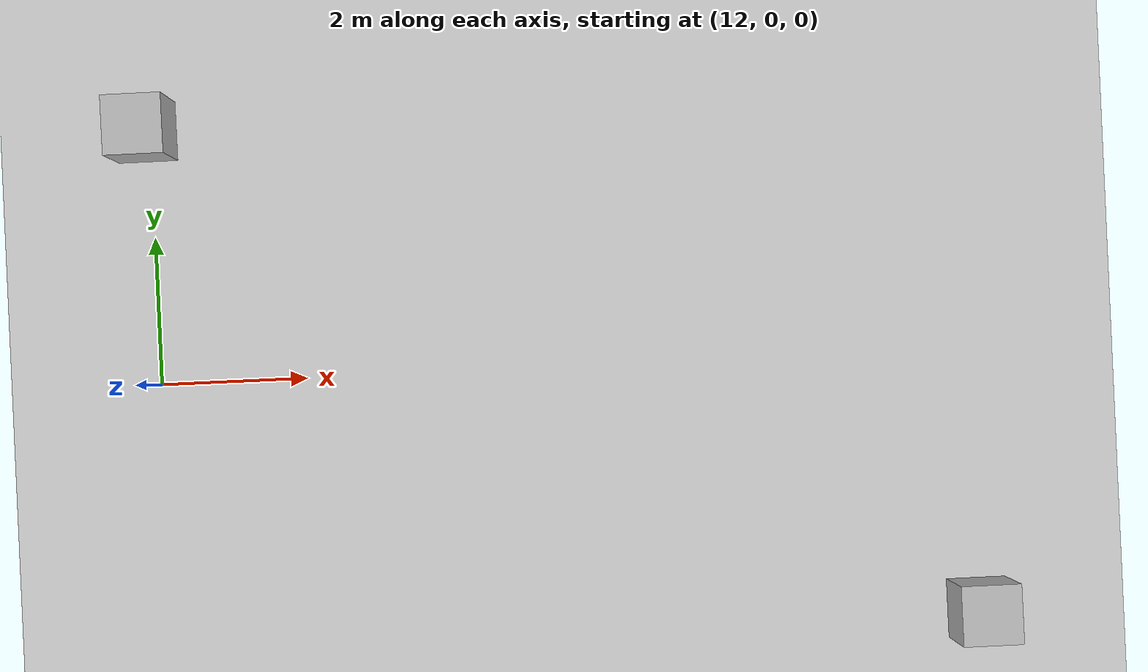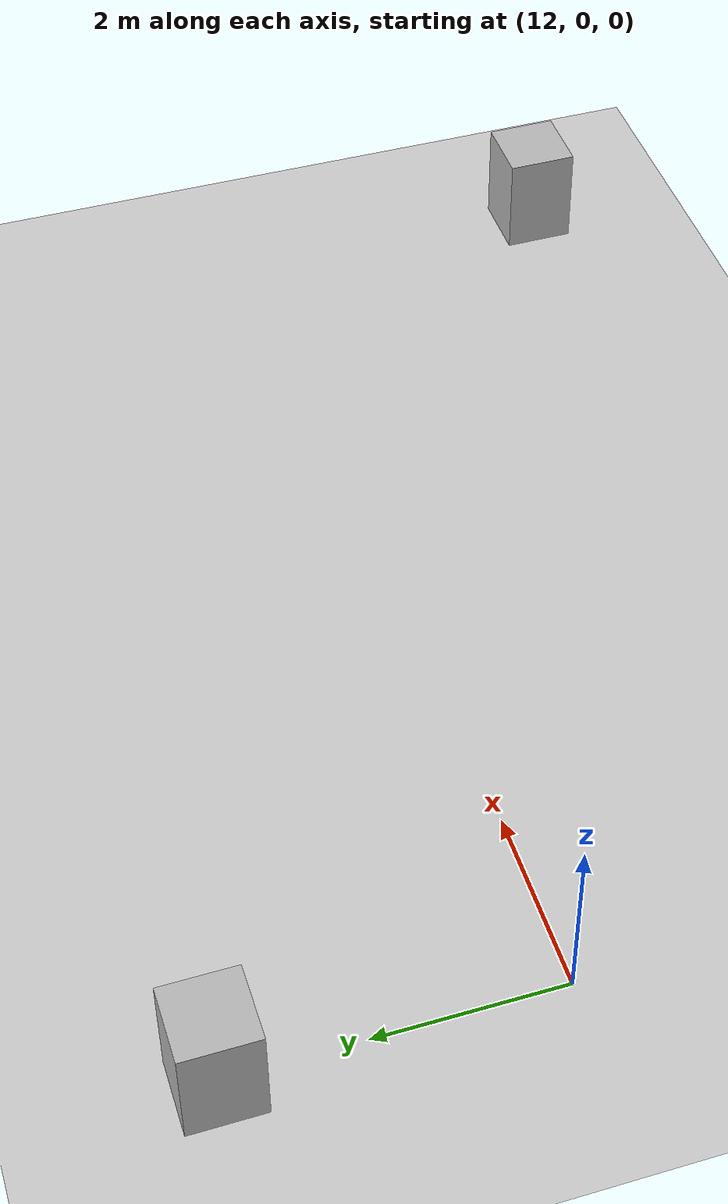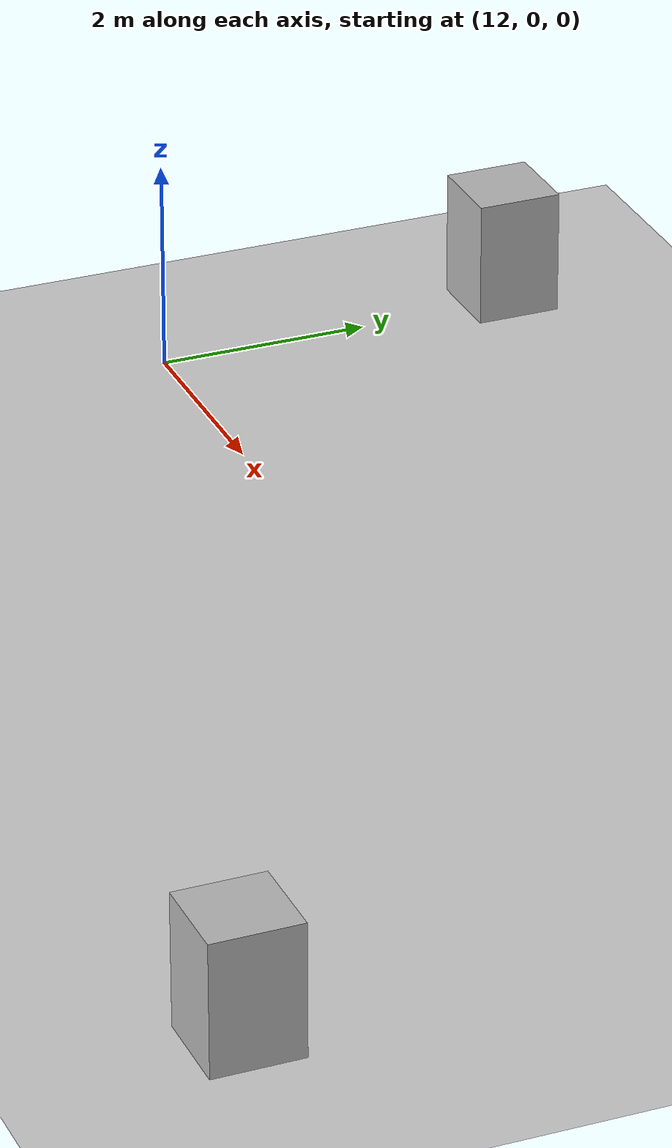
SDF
<?xml version="1.0"?>
<sdf version="1.6">
  <world name="v2-04g-p1-support-s5291">
    <gravity>0 0 -9.81</gravity>
    <physics name="v2_deterministic" type="ode">
      <max_step_size>0.002</max_step_size>
      <real_time_update_rate>500</real_time_update_rate>
    </physics>
    <include>
      <uri>model://sun</uri>
    </include>
    <include>
      <uri>model://ground_plane</uri>
    </include>
    <model name="cruise-left">
      <static>true</static>
      <pose>11.948389825 3.457005739 0.600000000 0 0 0.004574032</pose>
      <link name="link">
        <collision name="collision">
          <geometry>
            <box>
              <size>0.800000 0.800000 1.200000</size>
            </box>
          </geometry>
        </collision>
        <visual name="visual">
          <geometry>
            <box>
              <size>0.800000 0.800000 1.200000</size>
            </box>
          </geometry>
        </visual>
      </link>
    </model>
    <model name="cruise-right">
      <static>true</static>
      <pose>23.001032329 -3.535073849 0.600000000 0 0 0.002969562</pose>
      <link name="link">
        <collision name="collision">
          <geometry>
            <box>
              <size>0.800000 0.800000 1.200000</size>
            </box>
          </geometry>
        </collision>
        <visual name="visual">
          <geometry>
            <box>
              <size>0.800000 0.800000 1.200000</size>
            </box>
          </geometry>
        </visual>
      </link>
    </model>
  </world>
</sdf>
